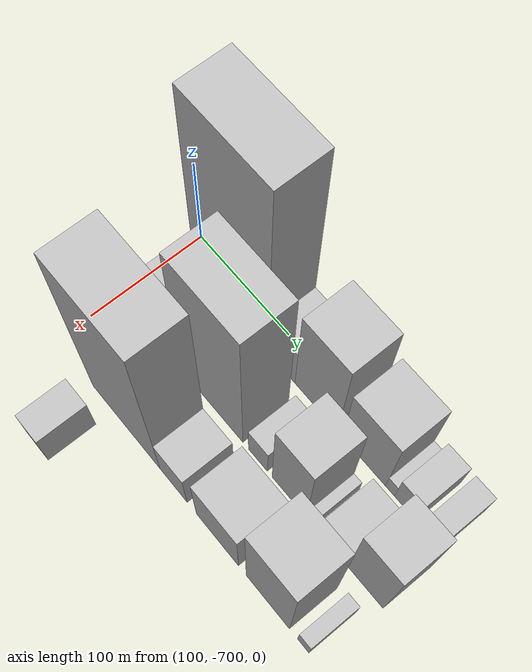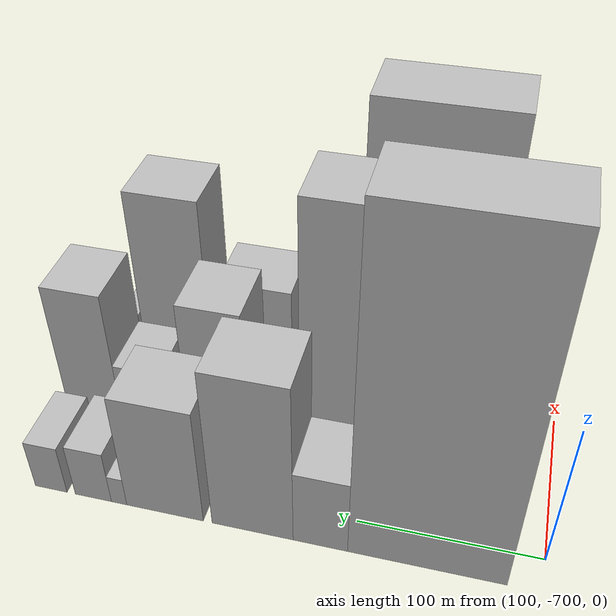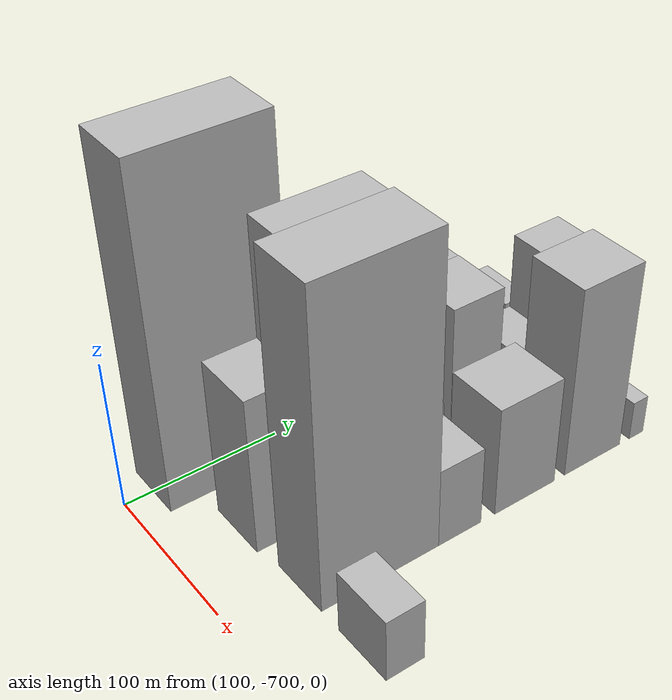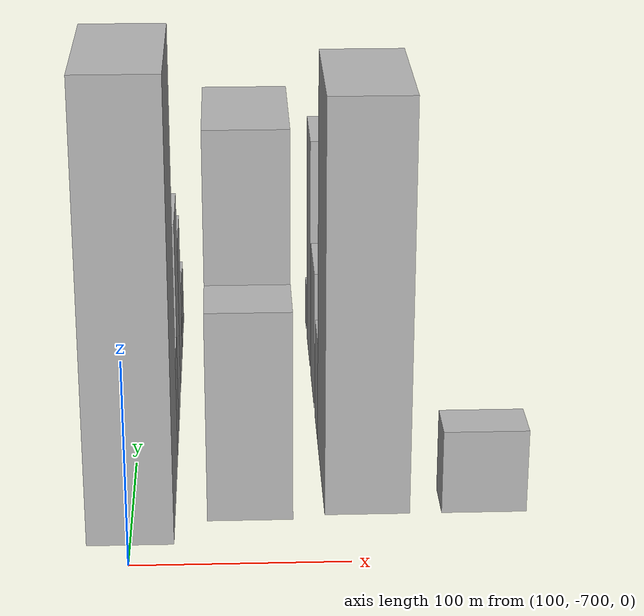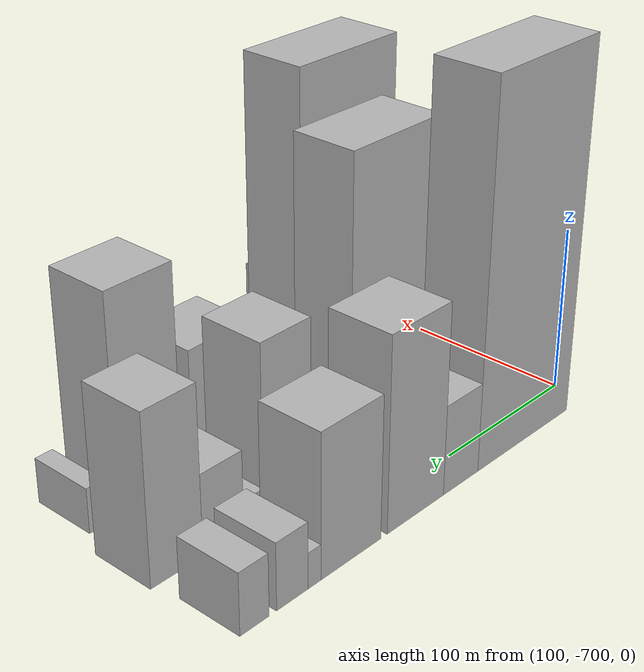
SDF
<sdf version="1.6">
 <world name="default">
  <model name="building_7">
   <static>1</static>
   <pose>100.0000 -640.3496 0 0.000000 0.000000 0.000000</pose>
   <link name="link">
    <pose>0 0 111.00 0 0 0</pose>
    <collision name="collision"><geometry><box><size>40.0000 83.0273 222.0000</size></box></geometry></collision>
    <visual name="visual">
     <cast_shadows>0</cast_shadows>
     <geometry><box><size>40.0000 83.0273 222.0000</size></box></geometry>
     <material>
      <script>
       <uri>model://HANNAS_wall/materials/scripts</uri>
       <uri>model://HANNAS_wall/materials/textures</uri>
       <name>vrc/HANNAS_wall</name>
      </script>
     </material>
    </visual>
   </link>
  </model>
  <model name="building_8">
   <static>1</static>
   <pose>100.0000 -584.0947 0 0.000000 0.000000 0.000000</pose>
   <link name="link">
    <pose>0 0 27.00 0 0 0</pose>
    <collision name="collision"><geometry><box><size>40.0000 29.4825 54.0000</size></box></geometry></collision>
    <visual name="visual">
     <cast_shadows>0</cast_shadows>
     <geometry><box><size>40.0000 29.4825 54.0000</size></box></geometry>
     <material>
      <script>
       <uri>model://HANNAS_wall/materials/scripts</uri>
       <uri>model://HANNAS_wall/materials/textures</uri>
       <name>vrc/HANNAS_wall</name>
      </script>
     </material>
    </visual>
   </link>
  </model>
  <model name="building_9">
   <static>1</static>
   <pose>100.0000 -546.7475 0 0.000000 0.000000 0.000000</pose>
   <link name="link">
    <pose>0 0 57.00 0 0 0</pose>
    <collision name="collision"><geometry><box><size>40.0000 45.2120 114.0000</size></box></geometry></collision>
    <visual name="visual">
     <cast_shadows>0</cast_shadows>
     <geometry><box><size>40.0000 45.2120 114.0000</size></box></geometry>
     <material>
      <script>
       <uri>model://HANNAS_wall/materials/scripts</uri>
       <uri>model://HANNAS_wall/materials/textures</uri>
       <name>vrc/HANNAS_wall</name>
      </script>
     </material>
    </visual>
   </link>
  </model>
  <model name="building_10">
   <static>1</static>
   <pose>100.0000 -497.0133 0 0.000000 0.000000 0.000000</pose>
   <link name="link">
    <pose>0 0 42.00 0 0 0</pose>
    <collision name="collision"><geometry><box><size>40.0000 44.2564 84.0000</size></box></geometry></collision>
    <visual name="visual">
     <cast_shadows>0</cast_shadows>
     <geometry><box><size>40.0000 44.2564 84.0000</size></box></geometry>
     <material>
      <script>
       <uri>model://HANNAS_wall/materials/scripts</uri>
       <uri>model://HANNAS_wall/materials/textures</uri>
       <name>vrc/HANNAS_wall</name>
      </script>
     </material>
    </visual>
   </link>
  </model>
  <model name="building_11">
   <static>1</static>
   <pose>100.0000 -470.3481 0 0.000000 0.000000 0.000000</pose>
   <link name="link">
    <pose>0 0 10.50 0 0 0</pose>
    <collision name="collision"><geometry><box><size>40.0000 9.0740 21.0000</size></box></geometry></collision>
    <visual name="visual">
     <cast_shadows>0</cast_shadows>
     <geometry><box><size>40.0000 9.0740 21.0000</size></box></geometry>
     <material>
      <script>
       <uri>model://HANNAS_wall/materials/scripts</uri>
       <uri>model://HANNAS_wall/materials/textures</uri>
       <name>vrc/HANNAS_wall</name>
      </script>
     </material>
    </visual>
   </link>
  </model>
  <model name="building_12">
   <static>1</static>
   <pose>100.0000 -455.0372 0 0.000000 0.000000 0.000000</pose>
   <link name="link">
    <pose>0 0 19.50 0 0 0</pose>
    <collision name="collision"><geometry><box><size>40.0000 21.5479 39.0000</size></box></geometry></collision>
    <visual name="visual">
     <cast_shadows>0</cast_shadows>
     <geometry><box><size>40.0000 21.5479 39.0000</size></box></geometry>
     <material>
      <script>
       <uri>model://HANNAS_wall/materials/scripts</uri>
       <uri>model://HANNAS_wall/materials/textures</uri>
       <name>vrc/HANNAS_wall</name>
      </script>
     </material>
    </visual>
   </link>
  </model>
  <model name="building_13">
   <static>1</static>
   <pose>100.0000 -429.6886 0 0.000000 0.000000 0.000000</pose>
   <link name="link">
    <pose>0 0 18.00 0 0 0</pose>
    <collision name="collision"><geometry><box><size>40.0000 19.1492 36.0000</size></box></geometry></collision>
    <visual name="visual">
     <cast_shadows>0</cast_shadows>
     <geometry><box><size>40.0000 19.1492 36.0000</size></box></geometry>
     <material>
      <script>
       <uri>model://HANNAS_wall/materials/scripts</uri>
       <uri>model://HANNAS_wall/materials/textures</uri>
       <name>vrc/HANNAS_wall</name>
      </script>
     </material>
    </visual>
   </link>
  </model>
  <model name="building_54">
   <static>1</static>
   <pose>155.0000 -643.7673 0 0.000000 0.000000 0.000000</pose>
   <link name="link">
    <pose>0 0 52.50 0 0 0</pose>
    <collision name="collision"><geometry><box><size>40.0000 33.1904 105.0000</size></box></geometry></collision>
    <visual name="visual">
     <cast_shadows>0</cast_shadows>
     <geometry><box><size>40.0000 33.1904 105.0000</size></box></geometry>
     <material>
      <script>
       <uri>model://HANNAS_wall/materials/scripts</uri>
       <uri>model://HANNAS_wall/materials/textures</uri>
       <name>vrc/HANNAS_wall</name>
      </script>
     </material>
    </visual>
   </link>
  </model>
  <model name="building_55">
   <static>1</static>
   <pose>155.0000 -593.0273 0 0.000000 0.000000 0.000000</pose>
   <link name="link">
    <pose>0 0 90.00 0 0 0</pose>
    <collision name="collision"><geometry><box><size>40.0000 68.2895 180.0000</size></box></geometry></collision>
    <visual name="visual">
     <cast_shadows>0</cast_shadows>
     <geometry><box><size>40.0000 68.2895 180.0000</size></box></geometry>
     <material>
      <script>
       <uri>model://HANNAS_wall/materials/scripts</uri>
       <uri>model://HANNAS_wall/materials/textures</uri>
       <name>vrc/HANNAS_wall</name>
      </script>
     </material>
    </visual>
   </link>
  </model>
  <model name="building_56">
   <static>1</static>
   <pose>155.0000 -542.8189 0 0.000000 0.000000 0.000000</pose>
   <link name="link">
    <pose>0 0 19.50 0 0 0</pose>
    <collision name="collision"><geometry><box><size>40.0000 20.1275 39.0000</size></box></geometry></collision>
    <visual name="visual">
     <cast_shadows>0</cast_shadows>
     <geometry><box><size>40.0000 20.1275 39.0000</size></box></geometry>
     <material>
      <script>
       <uri>model://HANNAS_wall/materials/scripts</uri>
       <uri>model://HANNAS_wall/materials/textures</uri>
       <name>vrc/HANNAS_wall</name>
      </script>
     </material>
    </visual>
   </link>
  </model>
  <model name="building_57">
   <static>1</static>
   <pose>155.0000 -509.9338 0 0.000000 0.000000 0.000000</pose>
   <link name="link">
    <pose>0 0 51.00 0 0 0</pose>
    <collision name="collision"><geometry><box><size>40.0000 35.6426 102.0000</size></box></geometry></collision>
    <visual name="visual">
     <cast_shadows>0</cast_shadows>
     <geometry><box><size>40.0000 35.6426 102.0000</size></box></geometry>
     <material>
      <script>
       <uri>model://HANNAS_wall/materials/scripts</uri>
       <uri>model://HANNAS_wall/materials/textures</uri>
       <name>vrc/HANNAS_wall</name>
      </script>
     </material>
    </visual>
   </link>
  </model>
  <model name="building_58">
   <static>1</static>
   <pose>155.0000 -488.0812 0 0.000000 0.000000 0.000000</pose>
   <link name="link">
    <pose>0 0 9.00 0 0 0</pose>
    <collision name="collision"><geometry><box><size>40.0000 8.0626 18.0000</size></box></geometry></collision>
    <visual name="visual">
     <cast_shadows>0</cast_shadows>
     <geometry><box><size>40.0000 8.0626 18.0000</size></box></geometry>
     <material>
      <script>
       <uri>model://HANNAS_wall/materials/scripts</uri>
       <uri>model://HANNAS_wall/materials/textures</uri>
       <name>vrc/HANNAS_wall</name>
      </script>
     </material>
    </visual>
   </link>
  </model>
  <model name="building_59">
   <static>1</static>
   <pose>155.0000 -463.9285 0 0.000000 0.000000 0.000000</pose>
   <link name="link">
    <pose>0 0 24.00 0 0 0</pose>
    <collision name="collision"><geometry><box><size>40.0000 28.2428 48.0000</size></box></geometry></collision>
    <visual name="visual">
     <cast_shadows>0</cast_shadows>
     <geometry><box><size>40.0000 28.2428 48.0000</size></box></geometry>
     <material>
      <script>
       <uri>model://HANNAS_wall/materials/scripts</uri>
       <uri>model://HANNAS_wall/materials/textures</uri>
       <name>vrc/HANNAS_wall</name>
      </script>
     </material>
    </visual>
   </link>
  </model>
  <model name="building_60">
   <static>1</static>
   <pose>155.0000 -432.6205 0 0.000000 0.000000 0.000000</pose>
   <link name="link">
    <pose>0 0 49.50 0 0 0</pose>
    <collision name="collision"><geometry><box><size>40.0000 34.3733 99.0000</size></box></geometry></collision>
    <visual name="visual">
     <cast_shadows>0</cast_shadows>
     <geometry><box><size>40.0000 34.3733 99.0000</size></box></geometry>
     <material>
      <script>
       <uri>model://HANNAS_wall/materials/scripts</uri>
       <uri>model://HANNAS_wall/materials/textures</uri>
       <name>vrc/HANNAS_wall</name>
      </script>
     </material>
    </visual>
   </link>
  </model>
  <model name="building_108">
   <static>1</static>
   <pose>210.0000 -618.1021 0 0.000000 0.000000 0.000000</pose>
   <link name="link">
    <pose>0 0 102.00 0 0 0</pose>
    <collision name="collision"><geometry><box><size>40.0000 76.5854 204.0000</size></box></geometry></collision>
    <visual name="visual">
     <cast_shadows>0</cast_shadows>
     <geometry><box><size>40.0000 76.5854 204.0000</size></box></geometry>
     <material>
      <script>
       <uri>model://HANNAS_wall/materials/scripts</uri>
       <uri>model://HANNAS_wall/materials/textures</uri>
       <name>vrc/HANNAS_wall</name>
      </script>
     </material>
    </visual>
   </link>
  </model>
  <model name="building_109">
   <static>1</static>
   <pose>210.0000 -564.9340 0 0.000000 0.000000 0.000000</pose>
   <link name="link">
    <pose>0 0 27.00 0 0 0</pose>
    <collision name="collision"><geometry><box><size>40.0000 29.7506 54.0000</size></box></geometry></collision>
    <visual name="visual">
     <cast_shadows>0</cast_shadows>
     <geometry><box><size>40.0000 29.7506 54.0000</size></box></geometry>
     <material>
      <script>
       <uri>model://HANNAS_wall/materials/scripts</uri>
       <uri>model://HANNAS_wall/materials/textures</uri>
       <name>vrc/HANNAS_wall</name>
      </script>
     </material>
    </visual>
   </link>
  </model>
  <model name="building_110">
   <static>1</static>
   <pose>210.0000 -517.8500 0 0.000000 0.000000 0.000000</pose>
   <link name="link">
    <pose>0 0 37.50 0 0 0</pose>
    <collision name="collision"><geometry><box><size>40.0000 44.4174 75.0000</size></box></geometry></collision>
    <visual name="visual">
     <cast_shadows>0</cast_shadows>
     <geometry><box><size>40.0000 44.4174 75.0000</size></box></geometry>
     <material>
      <script>
       <uri>model://HANNAS_wall/materials/scripts</uri>
       <uri>model://HANNAS_wall/materials/textures</uri>
       <name>vrc/HANNAS_wall</name>
      </script>
     </material>
    </visual>
   </link>
  </model>
  <model name="building_111">
   <static>1</static>
   <pose>210.0000 -465.6848 0 0.000000 0.000000 0.000000</pose>
   <link name="link">
    <pose>0 0 64.50 0 0 0</pose>
    <collision name="collision"><geometry><box><size>40.0000 43.9132 129.0000</size></box></geometry></collision>
    <visual name="visual">
     <cast_shadows>0</cast_shadows>
     <geometry><box><size>40.0000 43.9132 129.0000</size></box></geometry>
     <material>
      <script>
       <uri>model://HANNAS_wall/materials/scripts</uri>
       <uri>model://HANNAS_wall/materials/textures</uri>
       <name>vrc/HANNAS_wall</name>
      </script>
     </material>
    </visual>
   </link>
  </model>
  <model name="building_112">
   <static>1</static>
   <pose>210.0000 -430.0789 0 0.000000 0.000000 0.000000</pose>
   <link name="link">
    <pose>0 0 13.50 0 0 0</pose>
    <collision name="collision"><geometry><box><size>40.0000 11.2985 27.0000</size></box></geometry></collision>
    <visual name="visual">
     <cast_shadows>0</cast_shadows>
     <geometry><box><size>40.0000 11.2985 27.0000</size></box></geometry>
     <material>
      <script>
       <uri>model://HANNAS_wall/materials/scripts</uri>
       <uri>model://HANNAS_wall/materials/textures</uri>
       <name>vrc/HANNAS_wall</name>
      </script>
     </material>
    </visual>
   </link>
  </model>
  <model name="building_161">
   <static>1</static>
   <pose>265.0000 -644.4680 0 0.000000 0.000000 0.000000</pose>
   <link name="link">
    <pose>0 0 21.00 0 0 0</pose>
    <collision name="collision"><geometry><box><size>40.0000 23.6833 42.0000</size></box></geometry></collision>
    <visual name="visual">
     <cast_shadows>0</cast_shadows>
     <geometry><box><size>40.0000 23.6833 42.0000</size></box></geometry>
     <material>
      <script>
       <uri>model://HANNAS_wall/materials/scripts</uri>
       <uri>model://HANNAS_wall/materials/textures</uri>
       <name>vrc/HANNAS_wall</name>
      </script>
     </material>
    </visual>
   </link>
  </model>
 </world>
</sdf>
